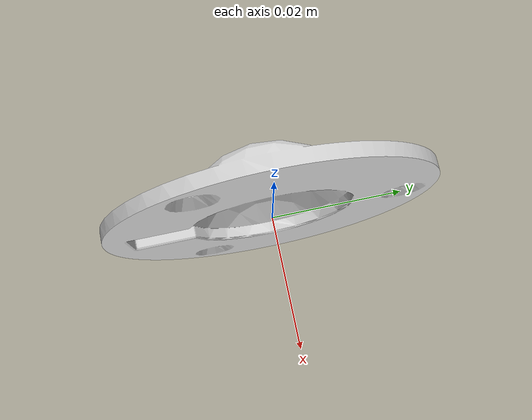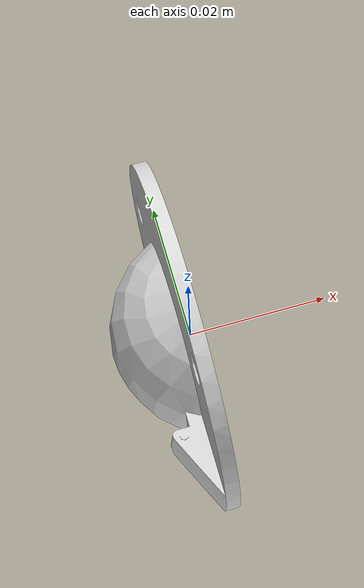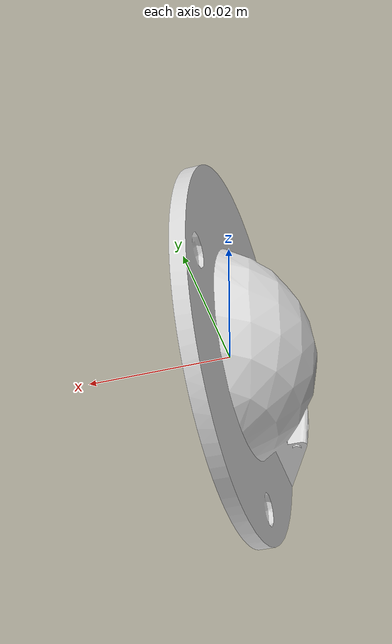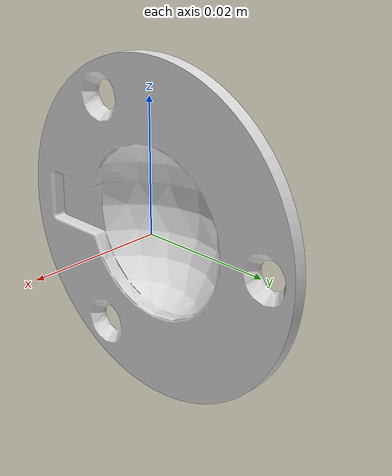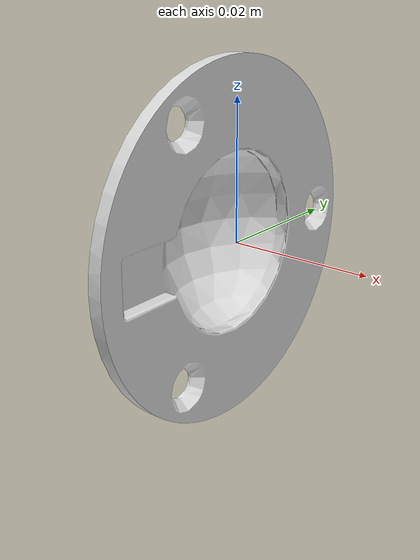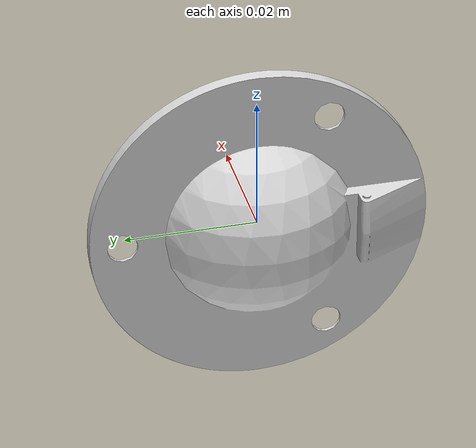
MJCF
<mujoco model="round_latch_housing">
  <default>
    <default class="visual">
      <geom group="2" type="mesh" contype="0" conaffinity="0"/>
    </default>
    <default class="collision">
      <geom group="3" type="mesh"/>
    </default>
  </default>
  <asset>
    <material name="mtl_round_latch_housing" specular="0.20000000000000004" shininess="1.0" rgba="0.85098039 0.85098039 0.85098039 1.0"/>
    <mesh file="round_latch_housing.obj"/>
  </asset>
  <worldbody>
    <body name="round_latch_housing">
      <geom material="mtl_round_latch_housing" mesh="round_latch_housing" class="visual"/>
      <geom mesh="round_latch_housing" class="collision"/>
    </body>
  </worldbody>
</mujoco>
